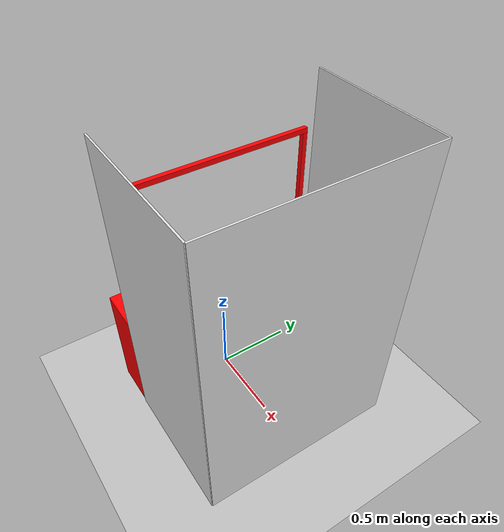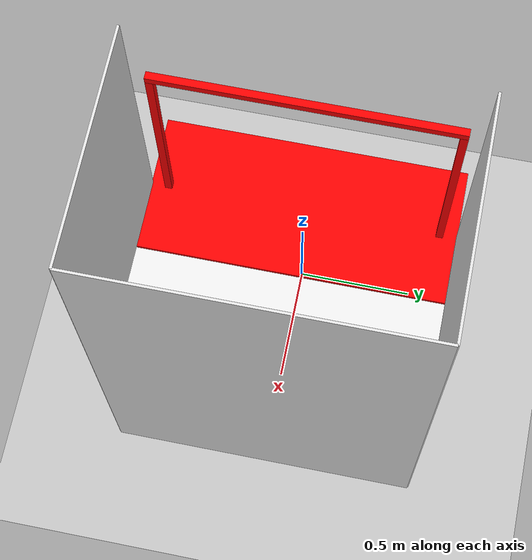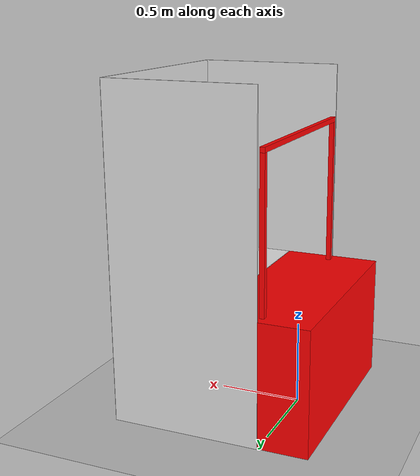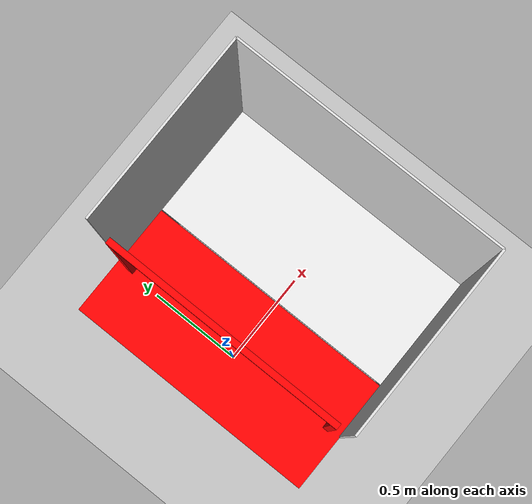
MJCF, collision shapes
<mujoco model="abc_box">
  <compiler angle="radian" meshdir="../yam/assets" texturedir="../yam/assets"/>

  <option integrator="implicitfast"/>
  <size nconmax="512" njmax="4096"/>

  <visual>
    <global azimuth="120" elevation="-20" offwidth="1920" offheight="1080"/>
    <quality shadowsize="8192" offsamples="16"/>
    <headlight ambient="0.40 0.40 0.40" diffuse="0.0 0.0 0.0" specular="0 0 0"/>
    <rgba haze="1.0 1.0 1.0 1"/>
  </visual>

  <asset>
    <mesh name="base_visual_gate" file="base_visual_gate.stl"/>
    <mesh name="top_camera_d405" file="d405.stl"/>
  </asset>

  <worldbody>
    <light pos="0 0 1.5" dir="0 0 -1" directional="true" diffuse="0.30 0.30 0.30" specular="0.05 0.05 0.05"/>

    <geom name="floor" size="0 0 0.05" type="plane" contype="0" conaffinity="0" rgba="0.75 0.75 0.75 1"/>
    <geom name="floor_collision" size="0 0 0.05" type="plane" group="3" rgba="0 0 0 0"/>

    <geom name="base_visual" type="mesh" contype="0" conaffinity="0" group="2" density="0"
      rgba="0.60 0.62 0.68 1" mesh="base_visual_gate"/>
    <geom name="base_collision" size="0.2975 0.65 0.375" pos="0 0 0.375" type="box" group="3" rgba="1 0 0 0.0"/>

    <body name="gate_collision" pos="0 0 0.75">
      <geom name="gate_post_left" size="0.015 0.015 0.45" pos="0 0.575 0.45" type="box" group="3" rgba="1 0 0 0.0"/>
      <geom name="gate_post_right" size="0.015 0.015 0.45" pos="0 -0.575 0.45" type="box" group="3" rgba="1 0 0 0.0"/>
      <geom name="gate_top_bar" size="0.015 0.015 0.59" pos="0 0 0.915" quat="0.707107 0.707107 0 0" type="box"
        group="3" rgba="1 0 0 0.0"/>
      <body name="top_bar_center" pos="0 0 0.915">
        <body name="top_camera_d405" pos="0.08600512 -0.009 0.03932053" quat="0.183012 0.683013 0.683013 0.183012">
          <geom type="mesh" contype="0" conaffinity="0" group="2" density="0.001" mass="0.001"
            rgba="0.22 0.22 0.24 1" mesh="top_camera_d405"/>
          <body name="top_camera_frame" pos="0.009 0 0" quat="0 0 0 1">
            <camera name="top" pos="0 0 0" quat="0 1 0 0" fovy="58"/>
          </body>
        </body>
      </body>
    </body>

    <geom name="back_wall" type="box" size="0.005 0.65 1.0" pos="0.9 0 1.0" group="2" contype="0" conaffinity="0"
      rgba="0.88 0.88 0.88 1"/>
    <geom name="back_wall_collision" type="box" size="0.005 0.65 1.0" pos="0.9 0 1.0" group="3" rgba="0 0 0 0"/>
    <geom name="left_wall" type="box" size="0.45 0.005 1.0" pos="0.45 0.65 1.0" group="2" contype="0" conaffinity="0"
      rgba="0.88 0.88 0.88 1"/>
    <geom name="left_wall_collision" type="box" size="0.45 0.005 1.0" pos="0.45 0.65 1.0" group="3" rgba="0 0 0 0"/>
    <geom name="right_wall" type="box" size="0.45 0.005 1.0" pos="0.45 -0.65 1.0" group="2" contype="0" conaffinity="0"
      rgba="0.88 0.88 0.88 1"/>
    <geom name="right_wall_collision" type="box" size="0.45 0.005 1.0" pos="0.45 -0.65 1.0" group="3" rgba="0 0 0 0"/>

    <body name="overhead_camera" pos="0.55 0.0 1.6">
      <camera name="overhead" pos="0 0 0" quat="0.707 0 0 -0.707" fovy="60"/>
    </body>
    <body name="left_side_camera" pos="0.5 0.55 1.05" euler="-1.3 0 3.14159">
      <camera name="left_side" pos="0 0 0" fovy="70"/>
    </body>
    <body name="right_side_camera" pos="0.5 -0.55 1.05" euler="1.3 0 0">
      <camera name="right_side" pos="0 0 0" fovy="70"/>
    </body>

    <!-- Front view: near the back wall, looking back at the arms. -->
    <camera name="front" pos="0.88 0 1.2" xyaxes="0 1 0 -0.342 0 0.94" fovy="75"/>

    <camera name="diag" pos="0.02 0.5 1.5" xyaxes="-0.687 -0.727 0 0.483 -0.457 0.746" fovy="55"/>
    <camera name="diag_right" pos="0.02 -0.5 1.5" xyaxes="0.687 -0.727 0 0.483 0.457 0.746" fovy="55"/>

    <body name="play_table">
      <geom name="table_visual" size="0.2975 0.65 0.005" pos="0.6 0 0.745" type="box" group="2" contype="0"
        conaffinity="0" rgba="0.92 0.92 0.92 1"/>
    </body>
    <geom name="table_plane" type="plane" size="0.2975 0.65 0.01" pos="0.6 0 0.75" rgba="0 0 0 0" group="3"/>
  </worldbody>
</mujoco>
